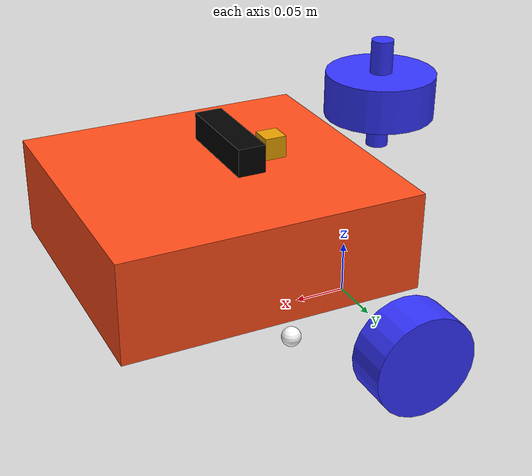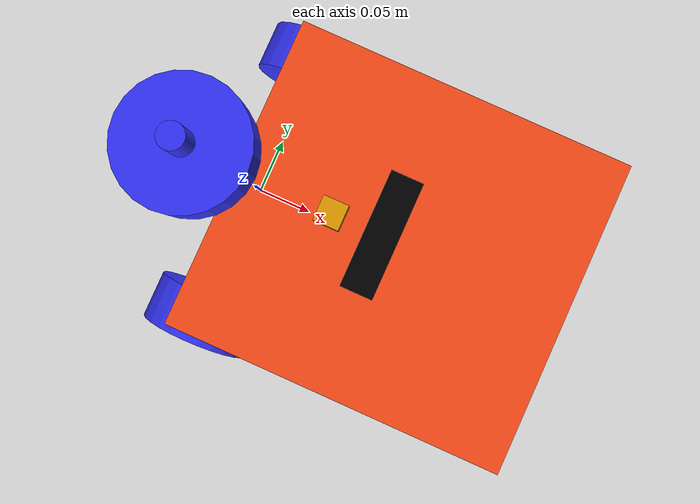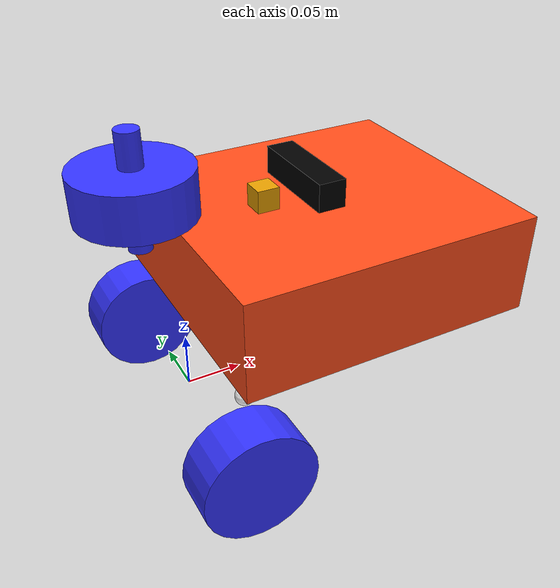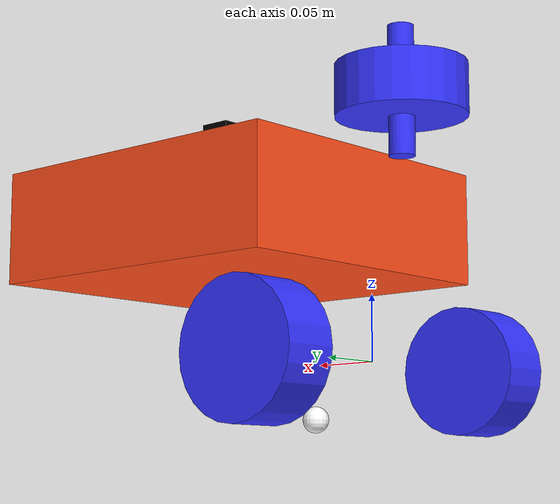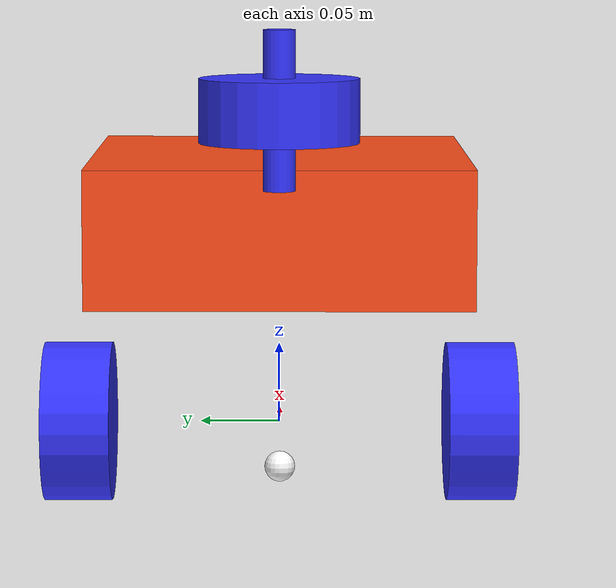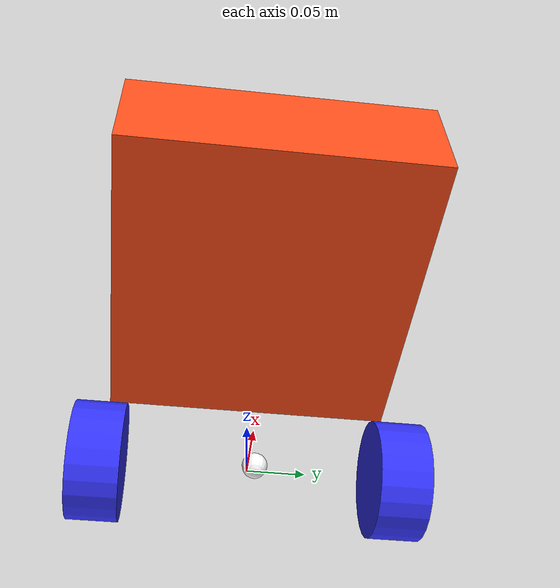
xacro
<?xml version="1.0"?>
<!-- Basic differential drive mobile base -->
<robot xmlns:xacro="http://www.ros.org/wiki/xacro" name="diffdrive_robot">

  <xacro:arg name="prefix" default="" />
  <xacro:arg name="use_ros2_control" default="true"/>
  <xacro:arg name="use_mock_hardware" default="false"/>
  <xacro:arg name="use_gazebo" default="false"/>

  <xacro:include filename="$(find susumu_robo)/susumu_diffbot/urdf/inertial_macros.xacro"/>
  <xacro:include filename="$(find susumu_robo)/susumu_diffbot/urdf/diffbot_description.urdf.xacro"/>
  <xacro:include filename="$(find susumu_robo)/susumu_diffbot/urdf/imu.xacro"/>
  <xacro:include filename="$(find susumu_robo)/susumu_diffbot/urdf/lidar.xacro"/>
  <xacro:include filename="$(find susumu_robo)/susumu_diffbot/urdf/camera.xacro"/>

  <xacro:diffbot prefix="$(arg prefix)" />

  <xacro:if value="$(arg use_ros2_control)">
    <xacro:include filename="$(find susumu_robo)/susumu_diffbot/urdf/diffbot.ros2_control.xacro"/>
    <xacro:diffbot_ros2_control
      name="DiffBot" prefix="$(arg prefix)"
      use_mock_hardware="$(arg use_mock_hardware)"
      use_gazebo="$(arg use_gazebo)"/>
  </xacro:if>

</robot>

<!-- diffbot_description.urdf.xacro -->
<robot xmlns:xacro="http://www.ros.org/wiki/xacro" >

    <xacro:macro name="diffbot" params="prefix">

    <xacro:include filename="inertial_macros.xacro"/>

    <xacro:property name="chassis_length" value="0.27"/>
    <xacro:property name="chassis_width" value="0.25"/>
    <xacro:property name="chassis_height" value="0.09"/>
    <xacro:property name="chassis_mass" value="1.0"/>
    <xacro:property name="wheel_radius" value="0.05035"/>
    <xacro:property name="wheel_thickness" value="0.043"/>
    <xacro:property name="wheel_mass" value="0.05"/>
    <xacro:property name="wheel_offset_x" value="0.0"/>
    <xacro:property name="wheel_offset_y" value="0.1275"/>
    <xacro:property name="wheel_offset_z" value="0.07"/>
    <xacro:property name="caster_wheel_radius" value="0.01"/>
    <xacro:property name="caster_wheel_mass" value="0.01"/>
    <xacro:property name="caster_wheel_offset_x" value="0.055"/>
    <xacro:property name="caster_wheel_offset_z" value="${-wheel_offset_z - wheel_radius + caster_wheel_radius}"/>

    <material name="white">
        <color rgba="1 1 1 1" />
    </material>

    <material name="orange">
        <color rgba="1 0.3 0.1 1"/>
    </material>

    <material name="blue">
        <color rgba="0.2 0.2 1 1"/>
    </material>

    <material name="black">
        <color rgba="0 0 0 1"/>
    </material>

    <material name="red">
        <color rgba="1 0 0 1"/>
    </material>

    <!-- BASE LINK -->

    <link name="base_link">
    </link>

    <!-- BASE_FOOTPRINT LINK -->

    <joint name="base_footprint_joint" type="fixed">
        <parent link="base_link"/>
        <child link="base_footprint"/>
        <origin xyz="0 0 0" rpy="0 0 0"/>
    </joint>

    <link name="base_footprint">
    </link>

    <!-- CHASSIS LINK -->

    <joint name="chassis_joint" type="fixed">
        <parent link="base_link"/>
        <child link="chassis"/>
        <origin xyz="${wheel_offset_x} 0 ${wheel_offset_z}"/>
    </joint>

    <link name="chassis">
        <visual>
            <origin xyz="${chassis_length/2} 0 ${chassis_height/2}"/>
            <geometry>
                <box size="${chassis_length} ${chassis_width} ${chassis_height}"/>
            </geometry>
            <material name="orange"/>
        </visual>
        <collision>
            <origin xyz="${chassis_length/2} 0 ${chassis_height/2}"/>
            <geometry>
                <box size="${chassis_length} ${chassis_width} ${chassis_height}"/>
            </geometry>
        </collision>
        <xacro:inertial_box mass="0.5" x="${chassis_length}" y="${chassis_width}" z="${chassis_height}">
            <origin xyz="${chassis_length/2} 0 ${chassis_height/2}" rpy="0 0 0"/>
        </xacro:inertial_box>
    </link>

    <gazebo reference="chassis">
        <material>Gazebo/Orange</material>
    </gazebo>

    <!-- LEFT WHEEL LINK -->

    <joint name="${prefix}left_wheel_joint" type="continuous">
        <parent link="base_link"/>
        <child link="${prefix}left_wheel"/>
        <origin xyz="0 ${wheel_offset_y} 0" rpy="-${pi/2} 0 0" />
        <axis xyz="0 0 1"/>
    </joint>

    <link name="${prefix}left_wheel">
        <visual>
            <geometry>
                <cylinder radius="${wheel_radius}" length="${wheel_thickness}"/>
            </geometry>
            <material name="blue"/>
        </visual>
        <collision>
            <geometry>
                <sphere radius="${wheel_radius}"/>
            </geometry>
        </collision>
        <xacro:inertial_cylinder mass="${wheel_mass}" length="${wheel_thickness}" radius="${wheel_radius}">
            <origin xyz="0 0 0" rpy="0 0 0"/>
        </xacro:inertial_cylinder>
    </link>

    <gazebo reference="${prefix}left_wheel">
        <material>Gazebo/Blue</material>
    </gazebo>

    <!-- RIGHT WHEEL LINK -->

    <joint name="${prefix}right_wheel_joint" type="continuous">
        <parent link="base_link"/>
        <child link="${prefix}right_wheel"/>
        <origin xyz="0 ${-wheel_offset_y} 0" rpy="${pi/2} 0 0" />
        <axis xyz="0 0 -1"/>
    </joint>

    <link name="${prefix}right_wheel">
        <visual>
            <geometry>
                <cylinder radius="${wheel_radius}" length="${wheel_thickness}"/>
            </geometry>
            <material name="blue"/>
        </visual>
        <collision>
            <geometry>
                <sphere radius="${wheel_radius}"/>
            </geometry>
        </collision>
        <xacro:inertial_cylinder mass="${wheel_mass}" length="${wheel_thickness}" radius="${wheel_radius}">
            <origin xyz="0 0 0" rpy="0 0 0"/>
        </xacro:inertial_cylinder>
    </link>

    <gazebo reference="${prefix}right_wheel">
        <material>Gazebo/Blue</material>
    </gazebo>

    <!-- CASTER WHEEL LINK -->

    <joint name="caster_wheel_joint" type="fixed">
        <parent link="chassis"/>
        <child link="caster_wheel"/>
        <origin xyz="${caster_wheel_offset_x} 0 ${caster_wheel_offset_z}"/>
    </joint>

    <link name="caster_wheel">
        <visual>
            <geometry>
                <sphere radius="${caster_wheel_radius}"/>
            </geometry>
            <material name="white"/>
        </visual>
        <collision>
            <geometry>
                <sphere radius="${caster_wheel_radius}"/>
            </geometry>
        </collision>
        <xacro:inertial_sphere mass="${caster_wheel_mass}" radius="${caster_wheel_radius}">
            <origin xyz="0 0 0" rpy="0 0 0"/>
        </xacro:inertial_sphere>
    </link>

    <gazebo reference="caster_wheel">
        <material>Gazebo/White</material>
        <mu1 value="0.001"/>
        <mu2 value="0.001"/>
    </gazebo>

    </xacro:macro>

</robot>

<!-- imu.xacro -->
<robot xmlns:xacro="http://www.ros.org/wiki/xacro" >

    <link name="imu_link">
        <visual>
            <geometry>
            <box size="0.02 0.02 0.02"/>
            </geometry>
        </visual>

        <collision>
            <geometry>
            <box size="0.02 0.02 0.02"/>
            </geometry>
        </collision>

        <xacro:inertial_box mass="0.01" x="0.02" y="0.02" z="0.02" >
            <origin xyz="0 0 0" rpy="0 0 0"/>
        </xacro:inertial_box>

        </link>

        <joint name="imu_joint" type="fixed">
            <parent link="base_link" />
            <child link="imu_link" />
            <origin xyz="0.08 0 0.17" />
        </joint>

        <gazebo reference="imu_link">
        <sensor name="imu_sensor" type="imu">
        <plugin filename="libgazebo_ros_imu_sensor.so" name="imu_plugin">
            <ros>
                <remapping>~/out:=imu/data</remapping>
            </ros>
            <initial_orientation_as_reference>false</initial_orientation_as_reference>
            <frame_name>imu_link</frame_name>
            </plugin>
            <always_on>true</always_on>
            <update_rate>100</update_rate>
            <visualize>true</visualize>
            <imu>
                <angular_velocity>
                    <x>
                    <noise type="gaussian">
                        <mean>0.0</mean>
                        <stddev>2e-4</stddev>
                        <bias_mean>0.0000075</bias_mean>
                        <bias_stddev>0.0000008</bias_stddev>
                    </noise>
                    </x>
                    <y>
                    <noise type="gaussian">
                        <mean>0.0</mean>
                        <stddev>2e-4</stddev>
                        <bias_mean>0.0000075</bias_mean>
                        <bias_stddev>0.0000008</bias_stddev>
                    </noise>
                    </y>
                    <z>
                    <noise type="gaussian">
                        <mean>0.0</mean>
                        <stddev>2e-4</stddev>
                        <bias_mean>0.0000075</bias_mean>
                        <bias_stddev>0.0000008</bias_stddev>
                    </noise>
                    </z>
                </angular_velocity>
                <linear_acceleration>
                    <x>
                    <noise type="gaussian">
                        <mean>0.0</mean>
                        <stddev>1.7e-2</stddev>
                        <bias_mean>0.1</bias_mean>
                        <bias_stddev>0.001</bias_stddev>
                    </noise>
                    </x>
                    <y>
                    <noise type="gaussian">
                        <mean>0.0</mean>
                        <stddev>1.7e-2</stddev>
                        <bias_mean>0.1</bias_mean>
                        <bias_stddev>0.001</bias_stddev>
                    </noise>
                    </y>
                    <z>
                    <noise type="gaussian">
                        <mean>0.0</mean>
                        <stddev>1.7e-2</stddev>
                        <bias_mean>0.1</bias_mean>
                        <bias_stddev>0.001</bias_stddev>
                    </noise>
                    </z>
                </linear_acceleration>
            </imu>
        </sensor>
        </gazebo>

</robot>

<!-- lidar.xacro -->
<robot xmlns:xacro="http://www.ros.org/wiki/xacro" >

    <xacro:property name="PI" value="3.1415926535897931"/>

    <joint name="laser_joint" type="fixed">
        <parent link="base_link"/>
        <child link="laser_frame"/>
        <origin xyz="-0.03 0 0.20" rpy="0 0 0"/>
    </joint>

    <link name="laser_frame">
        <visual>
            <geometry>
                <cylinder radius="0.05" length="0.04"/>
            </geometry>
            <material name="blue"/>
        </visual>
        <visual>
            <origin xyz="0 0 0.0"/>
            <geometry>
                <cylinder radius="0.01" length="0.1"/>
            </geometry>
            <material name="blue"/>
        </visual>
        <collision>
            <geometry>
                <cylinder radius="0.05" length="0.04"/>
            </geometry>
        </collision>
        <xacro:inertial_cylinder mass="0.1" length="0.04" radius="0.05">
            <origin xyz="0 0 0" rpy="0 0 0"/>
        </xacro:inertial_cylinder>
    </link>

    <gazebo reference="laser_frame">
        <material>Gazebo/Blue</material>

        <sensor name="laser" type="ray">
            <pose> 0 0 0 0 0 0 </pose>
            <visualize>false</visualize>
            <update_rate>10</update_rate>
            <ray>
                <scan>
                    <horizontal>
                        <samples>360</samples>
                        <min_angle>-3.14</min_angle>
                        <max_angle>3.14</max_angle>
                    </horizontal>
                </scan>
                <range>
                    <min>0.3</min>
                    <max>12</max>
                </range>
            </ray>
            <plugin name="laser_controller" filename="libgazebo_ros_ray_sensor.so">
                <ros>
                    <argument>~/out:=scan</argument>
                </ros>
                <output_type>sensor_msgs/LaserScan</output_type>
                <frame_name>laser_frame</frame_name>
            </plugin>
        </sensor>
    </gazebo>

</robot>

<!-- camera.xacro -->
<robot xmlns:xacro="http://www.ros.org/wiki/xacro">

  <!-- D435i 相当のシミュレーション用カメラ (depth + color). 実機の `/depth_camera/...` トピックに揃える. -->

  <joint name="camera_joint" type="fixed">
    <parent link="base_link"/>
    <child link="camera_link"/>
    <origin xyz="0.12 0 0.18" rpy="0 0 0"/>
  </joint>

  <link name="camera_link">
    <visual>
      <geometry>
        <box size="0.025 0.09 0.025"/>
      </geometry>
      <material name="black"/>
    </visual>
    <collision>
      <geometry>
        <box size="0.025 0.09 0.025"/>
      </geometry>
    </collision>
    <xacro:inertial_box mass="0.05" x="0.025" y="0.09" z="0.025">
      <origin xyz="0 0 0" rpy="0 0 0"/>
    </xacro:inertial_box>
  </link>

  <joint name="camera_optical_joint" type="fixed">
    <parent link="camera_link"/>
    <child link="camera_link_optical"/>
    <origin xyz="0 0 0" rpy="${-pi/2} 0 ${-pi/2}"/>
  </joint>

  <link name="camera_link_optical"/>

  <gazebo reference="camera_link">
    <material>Gazebo/Black</material>

    <sensor name="depth_camera" type="depth">
      <pose>0 0 0 0 0 0</pose>
      <visualize>false</visualize>
      <update_rate>15</update_rate>
      <camera name="depth_cam">
        <horizontal_fov>1.3962634</horizontal_fov>
        <image>
          <width>848</width>
          <height>480</height>
          <format>R8G8B8</format>
        </image>
        <clip>
          <near>0.1</near>
          <far>10.0</far>
        </clip>
      </camera>
      <plugin name="depth_camera_controller" filename="libgazebo_ros_camera.so">
        <ros>
          <namespace>depth_camera</namespace>
          <remapping>depth_cam/image_raw:=color/image_rect_raw</remapping>
          <remapping>depth_cam/camera_info:=color/camera_info</remapping>
          <remapping>depth_cam/depth/image_raw:=aligned_depth_to_color/image_raw</remapping>
          <remapping>depth_cam/depth/camera_info:=aligned_depth_to_color/camera_info</remapping>
          <remapping>depth_cam/points:=depth/color/points</remapping>
        </ros>
        <camera_name>depth_cam</camera_name>
        <frame_name>camera_link_optical</frame_name>
        <hack_baseline>0.05</hack_baseline>
        <min_depth>0.1</min_depth>
        <max_depth>10.0</max_depth>
      </plugin>
    </sensor>
  </gazebo>

</robot>
